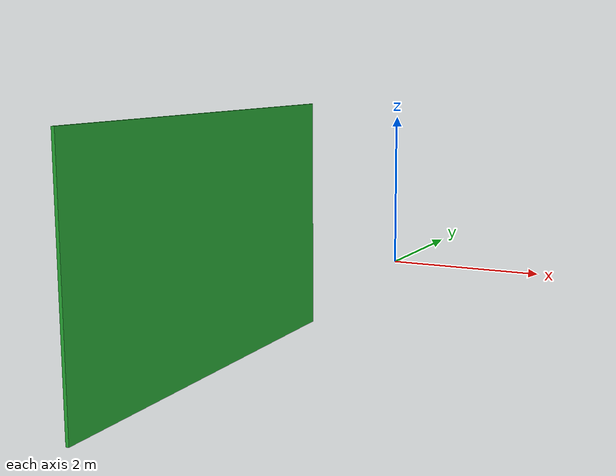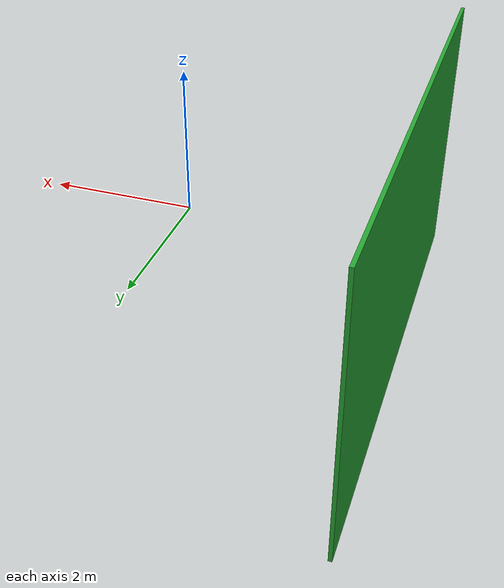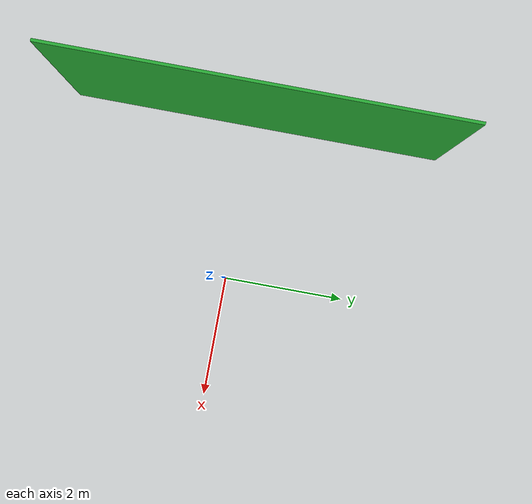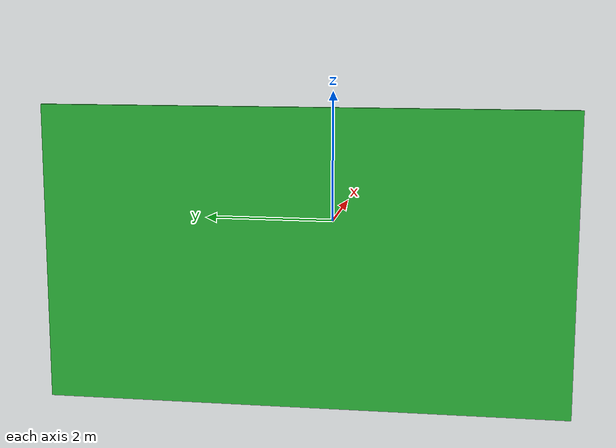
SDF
<?xml version='1.0'?>
<sdf version="1.4">
  <model name="background_wall">
    <pose>-3 0 0 0 0 0</pose>
    <static>true</static>
    <link name="link">
      <collision name="collision">
        <geometry>
          <box>
            <size>0.05 7 4</size>
          </box>
        </geometry>
      </collision>

      <visual name="visual">
        <geometry>
          <box>
            <size>0.05 7 4</size>
          </box>
        </geometry>
        <material>
          <script>
            <uri>file://media/materials/scripts/gazebo.material</uri>
            <name>Gazebo/Green</name>
          </script>
        </material>
      </visual>

    </link>
  </model>
</sdf>
